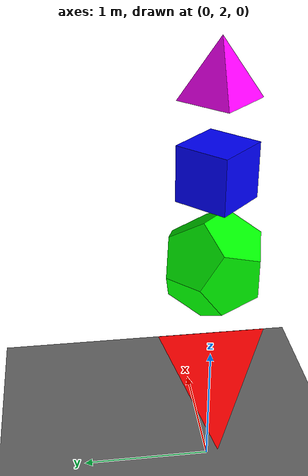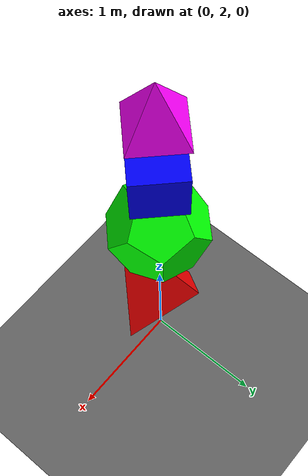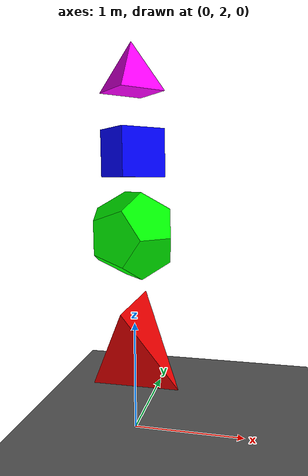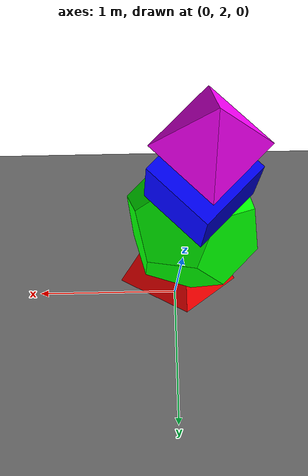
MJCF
<mujoco model="convex_convex">
  <default>
    <geom friction="0.5 0.0 0.0"/>
  </default>
  <option solver="Newton" iterations="10" ls_iterations="6"/>
  <asset>
      <mesh name="tetrahedron" file="meshes/tetrahedron.stl" scale="0.4 0.4 0.4" />
      <mesh name="dodecahedron" file="meshes/dodecahedron.stl" scale="0.04 0.04 0.04" />
      <mesh name="pyramid" file="meshes/pyramid.stl" scale="0.4 0.4 0.4" />
      <texture builtin="gradient" height="100" rgb1="1 1 1" rgb2="0 0 0" type="skybox" width="100"/>
      <texture builtin="flat" height="1278" mark="cross" markrgb="1 1 1" name="texgeom" random="0.01" rgb1="0.8 0.6 0.4" rgb2="0.8 0.6 0.4" type="cube" width="127"/>
      <texture builtin="checker" height="100" name="texplane" rgb1="0 0 0" rgb2="0.8 0.8 0.8" type="2d" width="100"/>
      <material name="MatPlane" reflectance="0.5" shininess="1" specular="1" texrepeat="60 60" texture="texplane"/>
      <material name="geom" texture="texgeom" texuniform="true"/>
  </asset>
  <worldbody>
    <light cutoff="100" diffuse="1 1 1" dir="-0 0 -1.3" directional="true" exponent="1" pos="0 0 1.3" specular=".1 .1 .1"/>
    <geom conaffinity="1" condim="3" material="MatPlane" name="floor" pos="0 0 0" size="40 40 40" type="plane"/>
    <camera pos="-0.323 -4.170 2.949" xyaxes="1.000 -0.024 -0.000 0.010 0.427 0.904"/>

    <body name="tetrahedron" pos="0.0 2.0 0.8">
      <joint axis="1 0 0" name="free1" pos="0 0 0" type="free"/>
      <geom name="tetrahedron" pos="0 0 0" type="mesh" mesh="tetrahedron" rgba="1 0 0 1"/>
    </body>

    <body name="dodecahedron" pos="0.0 2.0 1.8" euler="0.1 -0.1 45">
      <joint axis="1 0 0" name="free2" pos="0 0 0" type="free"/>
      <geom name="dodecahedron" pos="0 0 0" type="mesh" mesh="dodecahedron" rgba="0 1 0 1"/>
    </body>

    <body name="box" pos="0.0 2.0 2.5" euler="0.1 -0.1 45">
      <joint axis="1 0 0" name="free3" pos="0 0 0" type="free"/>
      <geom name="box1" pos="0 0 0" size="0.2 0.2 0.2" type="box" rgba="0 0 1 1"/>
    </body>

    <body name="pyramid" pos="0.0 2.0 3.0" euler="0.1 -0.1 45">
      <joint axis="1 0 0" name="free4" pos="0 0 0" type="free"/>
      <geom name="pyramid" pos="0 0 0" type="mesh" mesh="pyramid" rgba="1 0 1 1"/>
    </body>

  </worldbody>
</mujoco>
